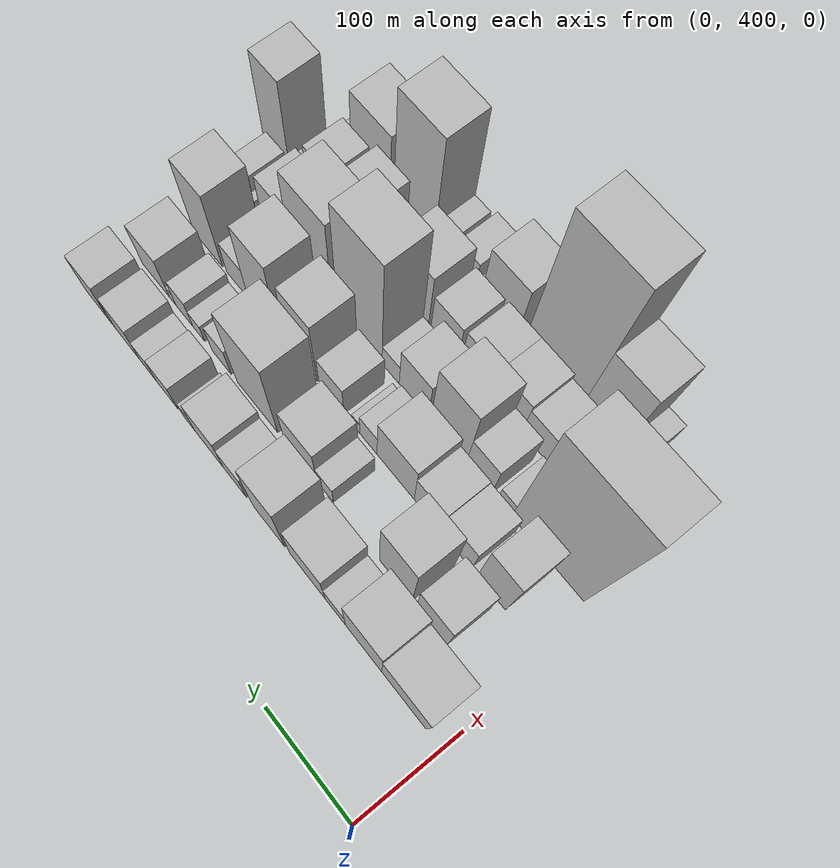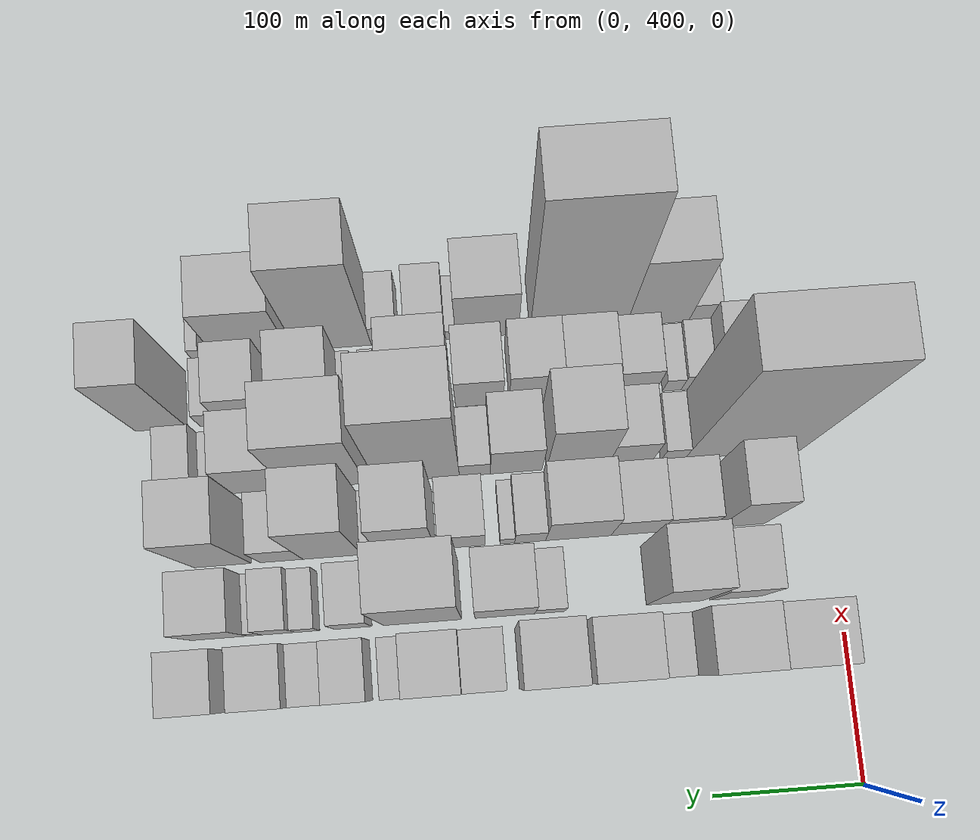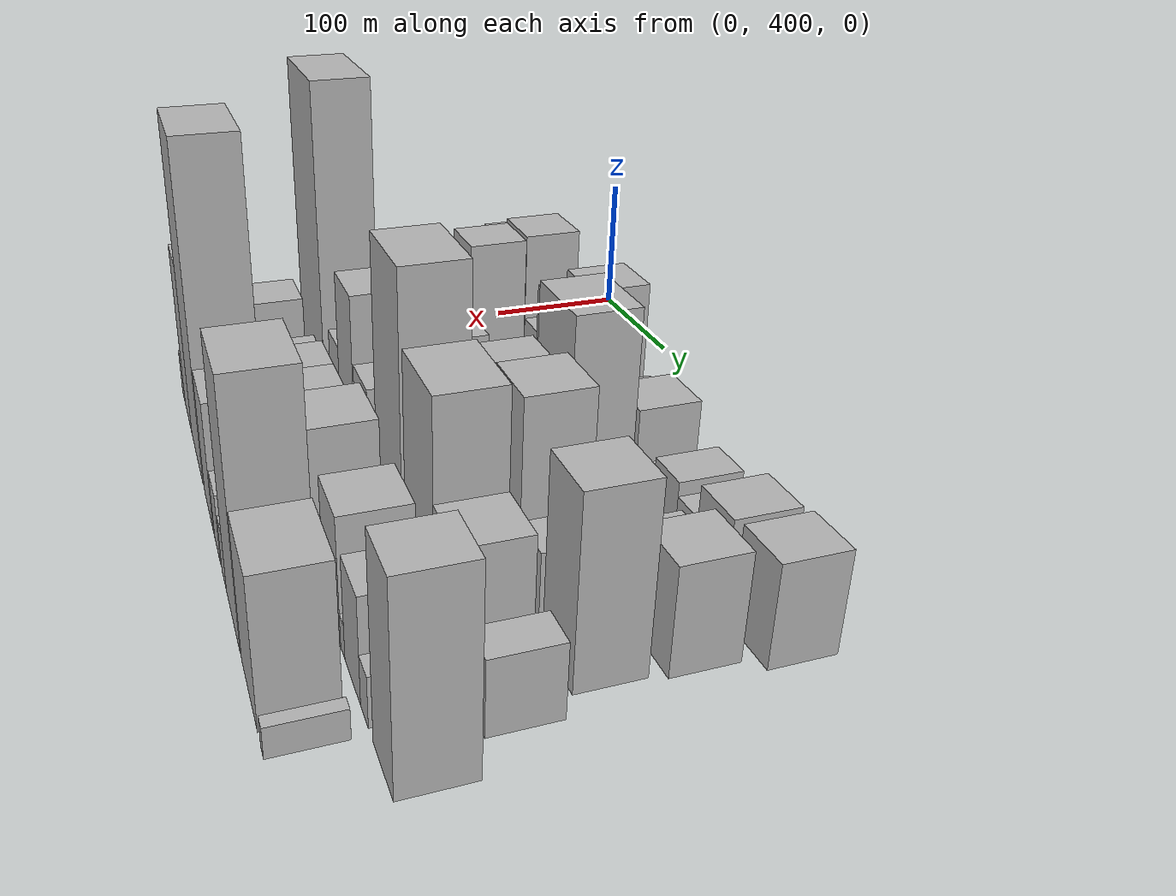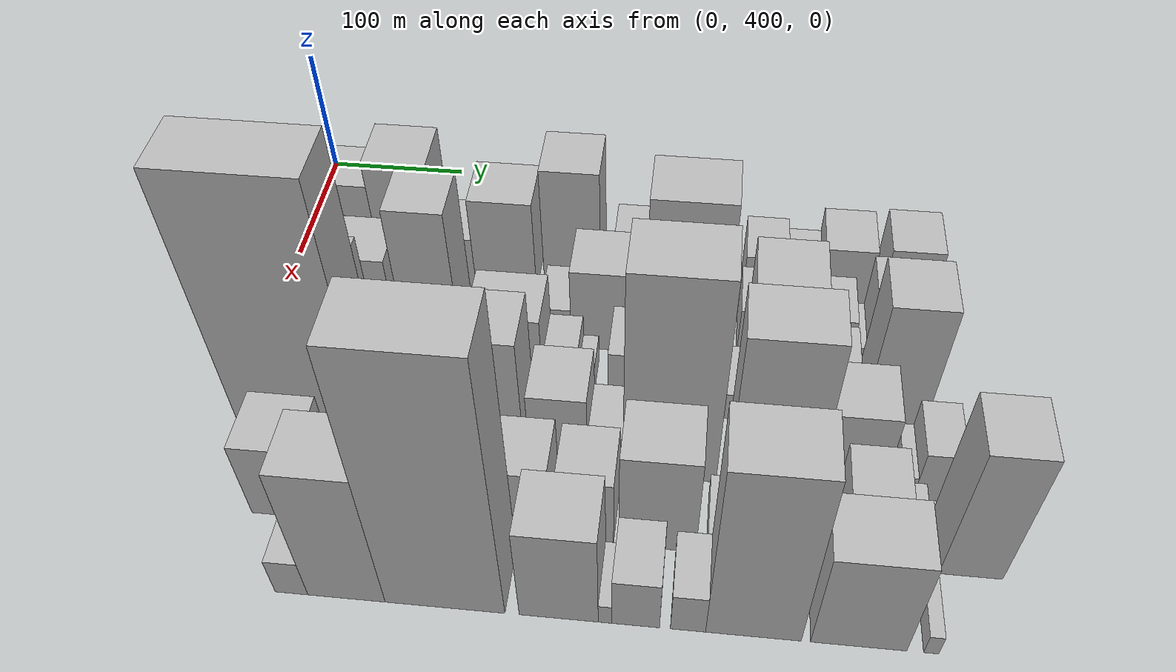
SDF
<sdf version="1.6">
 <world name="default">
  <model name="building_39">
   <static>1</static>
   <pose>100.0000 442.7852 0 0.000000 0.000000 0.000000</pose>
   <link name="link">
    <pose>0 0 43.50 0 0 0</pose>
    <collision name="collision"><geometry><box><size>40.0000 49.8468 87.0000</size></box></geometry></collision>
    <visual name="visual">
     <cast_shadows>0</cast_shadows>
     <geometry><box><size>40.0000 49.8468 87.0000</size></box></geometry>
     <material>
      <script>
       <uri>model://HANNAS_wall/materials/scripts</uri>
       <uri>model://HANNAS_wall/materials/textures</uri>
       <name>vrc/HANNAS_wall</name>
      </script>
     </material>
    </visual>
   </link>
  </model>
  <model name="building_40">
   <static>1</static>
   <pose>100.0000 488.5951 0 0.000000 0.000000 0.000000</pose>
   <link name="link">
    <pose>0 0 54.00 0 0 0</pose>
    <collision name="collision"><geometry><box><size>40.0000 41.7729 108.0000</size></box></geometry></collision>
    <visual name="visual">
     <cast_shadows>0</cast_shadows>
     <geometry><box><size>40.0000 41.7729 108.0000</size></box></geometry>
     <material>
      <script>
       <uri>model://HANNAS_wall/materials/scripts</uri>
       <uri>model://HANNAS_wall/materials/textures</uri>
       <name>vrc/HANNAS_wall</name>
      </script>
     </material>
    </visual>
   </link>
  </model>
  <model name="building_41">
   <static>1</static>
   <pose>100.0000 521.5661 0 0.000000 0.000000 0.000000</pose>
   <link name="link">
    <pose>0 0 22.50 0 0 0</pose>
    <collision name="collision"><geometry><box><size>40.0000 24.1690 45.0000</size></box></geometry></collision>
    <visual name="visual">
     <cast_shadows>0</cast_shadows>
     <geometry><box><size>40.0000 24.1690 45.0000</size></box></geometry>
     <material>
      <script>
       <uri>model://HANNAS_wall/materials/scripts</uri>
       <uri>model://HANNAS_wall/materials/textures</uri>
       <name>vrc/HANNAS_wall</name>
      </script>
     </material>
    </visual>
   </link>
  </model>
  <model name="building_42">
   <static>1</static>
   <pose>100.0000 555.1647 0 0.000000 0.000000 0.000000</pose>
   <link name="link">
    <pose>0 0 40.50 0 0 0</pose>
    <collision name="collision"><geometry><box><size>40.0000 43.0284 81.0000</size></box></geometry></collision>
    <visual name="visual">
     <cast_shadows>0</cast_shadows>
     <geometry><box><size>40.0000 43.0284 81.0000</size></box></geometry>
     <material>
      <script>
       <uri>model://HANNAS_wall/materials/scripts</uri>
       <uri>model://HANNAS_wall/materials/textures</uri>
       <name>vrc/HANNAS_wall</name>
      </script>
     </material>
    </visual>
   </link>
  </model>
  <model name="building_43">
   <static>1</static>
   <pose>100.0000 602.2209 0 0.000000 0.000000 0.000000</pose>
   <link name="link">
    <pose>0 0 55.50 0 0 0</pose>
    <collision name="collision"><geometry><box><size>40.0000 39.0840 111.0000</size></box></geometry></collision>
    <visual name="visual">
     <cast_shadows>0</cast_shadows>
     <geometry><box><size>40.0000 39.0840 111.0000</size></box></geometry>
     <material>
      <script>
       <uri>model://HANNAS_wall/materials/scripts</uri>
       <uri>model://HANNAS_wall/materials/textures</uri>
       <name>vrc/HANNAS_wall</name>
      </script>
     </material>
    </visual>
   </link>
  </model>
  <model name="building_44">
   <static>1</static>
   <pose>100.0000 645.0443 0 0.000000 0.000000 0.000000</pose>
   <link name="link">
    <pose>0 0 25.50 0 0 0</pose>
    <collision name="collision"><geometry><box><size>40.0000 28.5628 51.0000</size></box></geometry></collision>
    <visual name="visual">
     <cast_shadows>0</cast_shadows>
     <geometry><box><size>40.0000 28.5628 51.0000</size></box></geometry>
     <material>
      <script>
       <uri>model://HANNAS_wall/materials/scripts</uri>
       <uri>model://HANNAS_wall/materials/textures</uri>
       <name>vrc/HANNAS_wall</name>
      </script>
     </material>
    </visual>
   </link>
  </model>
  <model name="building_45">
   <static>1</static>
   <pose>100.0000 678.0807 0 0.000000 0.000000 0.000000</pose>
   <link name="link">
    <pose>0 0 33.00 0 0 0</pose>
    <collision name="collision"><geometry><box><size>40.0000 37.5100 66.0000</size></box></geometry></collision>
    <visual name="visual">
     <cast_shadows>0</cast_shadows>
     <geometry><box><size>40.0000 37.5100 66.0000</size></box></geometry>
     <material>
      <script>
       <uri>model://HANNAS_wall/materials/scripts</uri>
       <uri>model://HANNAS_wall/materials/textures</uri>
       <name>vrc/HANNAS_wall</name>
      </script>
     </material>
    </visual>
   </link>
  </model>
  <model name="building_46">
   <static>1</static>
   <pose>100.0000 704.9046 0 0.000000 0.000000 0.000000</pose>
   <link name="link">
    <pose>0 0 15.00 0 0 0</pose>
    <collision name="collision"><geometry><box><size>40.0000 16.1377 30.0000</size></box></geometry></collision>
    <visual name="visual">
     <cast_shadows>0</cast_shadows>
     <geometry><box><size>40.0000 16.1377 30.0000</size></box></geometry>
     <material>
      <script>
       <uri>model://HANNAS_wall/materials/scripts</uri>
       <uri>model://HANNAS_wall/materials/textures</uri>
       <name>vrc/HANNAS_wall</name>
      </script>
     </material>
    </visual>
   </link>
  </model>
  <model name="building_47">
   <static>1</static>
   <pose>100.0000 734.1687 0 0.000000 0.000000 0.000000</pose>
   <link name="link">
    <pose>0 0 24.00 0 0 0</pose>
    <collision name="collision"><geometry><box><size>40.0000 28.3905 48.0000</size></box></geometry></collision>
    <visual name="visual">
     <cast_shadows>0</cast_shadows>
     <geometry><box><size>40.0000 28.3905 48.0000</size></box></geometry>
     <material>
      <script>
       <uri>model://HANNAS_wall/materials/scripts</uri>
       <uri>model://HANNAS_wall/materials/textures</uri>
       <name>vrc/HANNAS_wall</name>
      </script>
     </material>
    </visual>
   </link>
  </model>
  <model name="building_48">
   <static>1</static>
   <pose>100.0000 759.6690 0 0.000000 0.000000 0.000000</pose>
   <link name="link">
    <pose>0 0 19.50 0 0 0</pose>
    <collision name="collision"><geometry><box><size>40.0000 22.6100 39.0000</size></box></geometry></collision>
    <visual name="visual">
     <cast_shadows>0</cast_shadows>
     <geometry><box><size>40.0000 22.6100 39.0000</size></box></geometry>
     <material>
      <script>
       <uri>model://HANNAS_wall/materials/scripts</uri>
       <uri>model://HANNAS_wall/materials/textures</uri>
       <name>vrc/HANNAS_wall</name>
      </script>
     </material>
    </visual>
   </link>
  </model>
  <model name="building_49">
   <static>1</static>
   <pose>100.0000 788.0264 0 0.000000 0.000000 0.000000</pose>
   <link name="link">
    <pose>0 0 30.00 0 0 0</pose>
    <collision name="collision"><geometry><box><size>40.0000 34.1048 60.0000</size></box></geometry></collision>
    <visual name="visual">
     <cast_shadows>0</cast_shadows>
     <geometry><box><size>40.0000 34.1048 60.0000</size></box></geometry>
     <material>
      <script>
       <uri>model://HANNAS_wall/materials/scripts</uri>
       <uri>model://HANNAS_wall/materials/textures</uri>
       <name>vrc/HANNAS_wall</name>
      </script>
     </material>
    </visual>
   </link>
  </model>
  <model name="building_50">
   <static>1</static>
   <pose>100.0000 809.2436 0 0.000000 0.000000 0.000000</pose>
   <link name="link">
    <pose>0 0 9.00 0 0 0</pose>
    <collision name="collision"><geometry><box><size>40.0000 8.3298 18.0000</size></box></geometry></collision>
    <visual name="visual">
     <cast_shadows>0</cast_shadows>
     <geometry><box><size>40.0000 8.3298 18.0000</size></box></geometry>
     <material>
      <script>
       <uri>model://HANNAS_wall/materials/scripts</uri>
       <uri>model://HANNAS_wall/materials/textures</uri>
       <name>vrc/HANNAS_wall</name>
      </script>
     </material>
    </visual>
   </link>
  </model>
  <model name="building_51">
   <static>1</static>
   <pose>100.0000 830.7961 0 0.000000 0.000000 0.000000</pose>
   <link name="link">
    <pose>0 0 31.50 0 0 0</pose>
    <collision name="collision"><geometry><box><size>40.0000 34.7751 63.0000</size></box></geometry></collision>
    <visual name="visual">
     <cast_shadows>0</cast_shadows>
     <geometry><box><size>40.0000 34.7751 63.0000</size></box></geometry>
     <material>
      <script>
       <uri>model://HANNAS_wall/materials/scripts</uri>
       <uri>model://HANNAS_wall/materials/textures</uri>
       <name>vrc/HANNAS_wall</name>
      </script>
     </material>
    </visual>
   </link>
  </model>
  <model name="building_86">
   <static>1</static>
   <pose>149.0000 470.6335 0 0.000000 0.000000 0.000000</pose>
   <link name="link">
    <pose>0 0 34.50 0 0 0</pose>
    <collision name="collision"><geometry><box><size>40.0000 35.2386 69.0000</size></box></geometry></collision>
    <visual name="visual">
     <cast_shadows>0</cast_shadows>
     <geometry><box><size>40.0000 35.2386 69.0000</size></box></geometry>
     <material>
      <script>
       <uri>model://HANNAS_wall/materials/scripts</uri>
       <uri>model://HANNAS_wall/materials/textures</uri>
       <name>vrc/HANNAS_wall</name>
      </script>
     </material>
    </visual>
   </link>
  </model>
  <model name="building_87">
   <static>1</static>
   <pose>149.0000 512.4577 0 0.000000 0.000000 0.000000</pose>
   <link name="link">
    <pose>0 0 57.00 0 0 0</pose>
    <collision name="collision"><geometry><box><size>40.0000 38.4098 114.0000</size></box></geometry></collision>
    <visual name="visual">
     <cast_shadows>0</cast_shadows>
     <geometry><box><size>40.0000 38.4098 114.0000</size></box></geometry>
     <material>
      <script>
       <uri>model://HANNAS_wall/materials/scripts</uri>
       <uri>model://HANNAS_wall/materials/textures</uri>
       <name>vrc/HANNAS_wall</name>
      </script>
     </material>
    </visual>
   </link>
  </model>
  <model name="building_88">
   <static>1</static>
   <pose>149.0000 597.3273 0 0.000000 0.000000 0.000000</pose>
   <link name="link">
    <pose>0 0 18.00 0 0 0</pose>
    <collision name="collision"><geometry><box><size>40.0000 20.4431 36.0000</size></box></geometry></collision>
    <visual name="visual">
     <cast_shadows>0</cast_shadows>
     <geometry><box><size>40.0000 20.4431 36.0000</size></box></geometry>
     <material>
      <script>
       <uri>model://HANNAS_wall/materials/scripts</uri>
       <uri>model://HANNAS_wall/materials/textures</uri>
       <name>vrc/HANNAS_wall</name>
      </script>
     </material>
    </visual>
   </link>
  </model>
  <model name="building_89">
   <static>1</static>
   <pose>149.0000 627.6683 0 0.000000 0.000000 0.000000</pose>
   <link name="link">
    <pose>0 0 36.00 0 0 0</pose>
    <collision name="collision"><geometry><box><size>40.0000 40.2389 72.0000</size></box></geometry></collision>
    <visual name="visual">
     <cast_shadows>0</cast_shadows>
     <geometry><box><size>40.0000 40.2389 72.0000</size></box></geometry>
     <material>
      <script>
       <uri>model://HANNAS_wall/materials/scripts</uri>
       <uri>model://HANNAS_wall/materials/textures</uri>
       <name>vrc/HANNAS_wall</name>
      </script>
     </material>
    </visual>
   </link>
  </model>
  <model name="building_90">
   <static>1</static>
   <pose>149.0000 683.1310 0 0.000000 0.000000 0.000000</pose>
   <link name="link">
    <pose>0 0 69.00 0 0 0</pose>
    <collision name="collision"><geometry><box><size>40.0000 52.6865 138.0000</size></box></geometry></collision>
    <visual name="visual">
     <cast_shadows>0</cast_shadows>
     <geometry><box><size>40.0000 52.6865 138.0000</size></box></geometry>
     <material>
      <script>
       <uri>model://HANNAS_wall/materials/scripts</uri>
       <uri>model://HANNAS_wall/materials/textures</uri>
       <name>vrc/HANNAS_wall</name>
      </script>
     </material>
    </visual>
   </link>
  </model>
  <model name="building_91">
   <static>1</static>
   <pose>149.0000 730.1285 0 0.000000 0.000000 0.000000</pose>
   <link name="link">
    <pose>0 0 24.00 0 0 0</pose>
    <collision name="collision"><geometry><box><size>40.0000 25.3084 48.0000</size></box></geometry></collision>
    <visual name="visual">
     <cast_shadows>0</cast_shadows>
     <geometry><box><size>40.0000 25.3084 48.0000</size></box></geometry>
     <material>
      <script>
       <uri>model://HANNAS_wall/materials/scripts</uri>
       <uri>model://HANNAS_wall/materials/textures</uri>
       <name>vrc/HANNAS_wall</name>
      </script>
     </material>
    </visual>
   </link>
  </model>
  <model name="building_92">
   <static>1</static>
   <pose>149.0000 760.8569 0 0.000000 0.000000 0.000000</pose>
   <link name="link">
    <pose>0 0 15.00 0 0 0</pose>
    <collision name="collision"><geometry><box><size>40.0000 16.1484 30.0000</size></box></geometry></collision>
    <visual name="visual">
     <cast_shadows>0</cast_shadows>
     <geometry><box><size>40.0000 16.1484 30.0000</size></box></geometry>
     <material>
      <script>
       <uri>model://HANNAS_wall/materials/scripts</uri>
       <uri>model://HANNAS_wall/materials/textures</uri>
       <name>vrc/HANNAS_wall</name>
      </script>
     </material>
    </visual>
   </link>
  </model>
  <model name="building_93">
   <static>1</static>
   <pose>149.0000 780.4100 0 0.000000 0.000000 0.000000</pose>
   <link name="link">
    <pose>0 0 22.50 0 0 0</pose>
    <collision name="collision"><geometry><box><size>40.0000 22.9578 45.0000</size></box></geometry></collision>
    <visual name="visual">
     <cast_shadows>0</cast_shadows>
     <geometry><box><size>40.0000 22.9578 45.0000</size></box></geometry>
     <material>
      <script>
       <uri>model://HANNAS_wall/materials/scripts</uri>
       <uri>model://HANNAS_wall/materials/textures</uri>
       <name>vrc/HANNAS_wall</name>
      </script>
     </material>
    </visual>
   </link>
  </model>
  <model name="building_94">
   <static>1</static>
   <pose>149.0000 796.4167 0 0.000000 0.000000 0.000000</pose>
   <link name="link">
    <pose>0 0 10.50 0 0 0</pose>
    <collision name="collision"><geometry><box><size>40.0000 9.0556 21.0000</size></box></geometry></collision>
    <visual name="visual">
     <cast_shadows>0</cast_shadows>
     <geometry><box><size>40.0000 9.0556 21.0000</size></box></geometry>
     <material>
      <script>
       <uri>model://HANNAS_wall/materials/scripts</uri>
       <uri>model://HANNAS_wall/materials/textures</uri>
       <name>vrc/HANNAS_wall</name>
      </script>
     </material>
    </visual>
   </link>
  </model>
  <model name="building_95">
   <static>1</static>
   <pose>149.0000 819.9906 0 0.000000 0.000000 0.000000</pose>
   <link name="link">
    <pose>0 0 33.00 0 0 0</pose>
    <collision name="collision"><geometry><box><size>40.0000 38.0922 66.0000</size></box></geometry></collision>
    <visual name="visual">
     <cast_shadows>0</cast_shadows>
     <geometry><box><size>40.0000 38.0922 66.0000</size></box></geometry>
     <material>
      <script>
       <uri>model://HANNAS_wall/materials/scripts</uri>
       <uri>model://HANNAS_wall/materials/textures</uri>
       <name>vrc/HANNAS_wall</name>
      </script>
     </material>
    </visual>
   </link>
  </model>
  <model name="building_133">
   <static>1</static>
   <pose>198.0000 461.5488 0 0.000000 0.000000 0.000000</pose>
   <link name="link">
    <pose>0 0 49.50 0 0 0</pose>
    <collision name="collision"><geometry><box><size>40.0000 31.7575 99.0000</size></box></geometry></collision>
    <visual name="visual">
     <cast_shadows>0</cast_shadows>
     <geometry><box><size>40.0000 31.7575 99.0000</size></box></geometry>
     <material>
      <script>
       <uri>model://HANNAS_wall/materials/scripts</uri>
       <uri>model://HANNAS_wall/materials/textures</uri>
       <name>vrc/HANNAS_wall</name>
      </script>
     </material>
    </visual>
   </link>
  </model>
  <model name="building_134">
   <static>1</static>
   <pose>198.0000 480.5862 0 0.000000 0.000000 0.000000</pose>
   <link name="link">
    <pose>0 0 7.50 0 0 0</pose>
    <collision name="collision"><geometry><box><size>40.0000 6.3175 15.0000</size></box></geometry></collision>
    <visual name="visual">
     <cast_shadows>0</cast_shadows>
     <geometry><box><size>40.0000 6.3175 15.0000</size></box></geometry>
     <material>
      <script>
       <uri>model://HANNAS_wall/materials/scripts</uri>
       <uri>model://HANNAS_wall/materials/textures</uri>
       <name>vrc/HANNAS_wall</name>
      </script>
     </material>
    </visual>
   </link>
  </model>
  <model name="building_135">
   <static>1</static>
   <pose>198.0000 500.8085 0 0.000000 0.000000 0.000000</pose>
   <link name="link">
    <pose>0 0 28.50 0 0 0</pose>
    <collision name="collision"><geometry><box><size>40.0000 34.1270 57.0000</size></box></geometry></collision>
    <visual name="visual">
     <cast_shadows>0</cast_shadows>
     <geometry><box><size>40.0000 34.1270 57.0000</size></box></geometry>
     <material>
      <script>
       <uri>model://HANNAS_wall/materials/scripts</uri>
       <uri>model://HANNAS_wall/materials/textures</uri>
       <name>vrc/HANNAS_wall</name>
      </script>
     </material>
    </visual>
   </link>
  </model>
  <model name="building_136">
   <static>1</static>
   <pose>198.0000 534.4662 0 0.000000 0.000000 0.000000</pose>
   <link name="link">
    <pose>0 0 30.00 0 0 0</pose>
    <collision name="collision"><geometry><box><size>40.0000 33.1884 60.0000</size></box></geometry></collision>
    <visual name="visual">
     <cast_shadows>0</cast_shadows>
     <geometry><box><size>40.0000 33.1884 60.0000</size></box></geometry>
     <material>
      <script>
       <uri>model://HANNAS_wall/materials/scripts</uri>
       <uri>model://HANNAS_wall/materials/textures</uri>
       <name>vrc/HANNAS_wall</name>
      </script>
     </material>
    </visual>
   </link>
  </model>
  <model name="building_137">
   <static>1</static>
   <pose>198.0000 573.4356 0 0.000000 0.000000 0.000000</pose>
   <link name="link">
    <pose>0 0 39.00 0 0 0</pose>
    <collision name="collision"><geometry><box><size>40.0000 44.7503 78.0000</size></box></geometry></collision>
    <visual name="visual">
     <cast_shadows>0</cast_shadows>
     <geometry><box><size>40.0000 44.7503 78.0000</size></box></geometry>
     <material>
      <script>
       <uri>model://HANNAS_wall/materials/scripts</uri>
       <uri>model://HANNAS_wall/materials/textures</uri>
       <name>vrc/HANNAS_wall</name>
      </script>
     </material>
    </visual>
   </link>
  </model>
  <model name="building_138">
   <static>1</static>
   <pose>198.0000 606.4323 0 0.000000 0.000000 0.000000</pose>
   <link name="link">
    <pose>0 0 21.00 0 0 0</pose>
    <collision name="collision"><geometry><box><size>40.0000 21.2433 42.0000</size></box></geometry></collision>
    <visual name="visual">
     <cast_shadows>0</cast_shadows>
     <geometry><box><size>40.0000 21.2433 42.0000</size></box></geometry>
     <material>
      <script>
       <uri>model://HANNAS_wall/materials/scripts</uri>
       <uri>model://HANNAS_wall/materials/textures</uri>
       <name>vrc/HANNAS_wall</name>
      </script>
     </material>
    </visual>
   </link>
  </model>
  <model name="building_139">
   <static>1</static>
   <pose>198.0000 622.0488 0 0.000000 0.000000 0.000000</pose>
   <link name="link">
    <pose>0 0 12.00 0 0 0</pose>
    <collision name="collision"><geometry><box><size>40.0000 9.9896 24.0000</size></box></geometry></collision>
    <visual name="visual">
     <cast_shadows>0</cast_shadows>
     <geometry><box><size>40.0000 9.9896 24.0000</size></box></geometry>
     <material>
      <script>
       <uri>model://HANNAS_wall/materials/scripts</uri>
       <uri>model://HANNAS_wall/materials/textures</uri>
       <name>vrc/HANNAS_wall</name>
      </script>
     </material>
    </visual>
   </link>
  </model>
  <model name="building_140">
   <static>1</static>
   <pose>198.0000 652.5104 0 0.000000 0.000000 0.000000</pose>
   <link name="link">
    <pose>0 0 27.00 0 0 0</pose>
    <collision name="collision"><geometry><box><size>40.0000 30.9337 54.0000</size></box></geometry></collision>
    <visual name="visual">
     <cast_shadows>0</cast_shadows>
     <geometry><box><size>40.0000 30.9337 54.0000</size></box></geometry>
     <material>
      <script>
       <uri>model://HANNAS_wall/materials/scripts</uri>
       <uri>model://HANNAS_wall/materials/textures</uri>
       <name>vrc/HANNAS_wall</name>
      </script>
     </material>
    </visual>
   </link>
  </model>
  <model name="building_141">
   <static>1</static>
   <pose>198.0000 690.1875 0 0.000000 0.000000 0.000000</pose>
   <link name="link">
    <pose>0 0 55.50 0 0 0</pose>
    <collision name="collision"><geometry><box><size>40.0000 38.4205 111.0000</size></box></geometry></collision>
    <visual name="visual">
     <cast_shadows>0</cast_shadows>
     <geometry><box><size>40.0000 38.4205 111.0000</size></box></geometry>
     <material>
      <script>
       <uri>model://HANNAS_wall/materials/scripts</uri>
       <uri>model://HANNAS_wall/materials/textures</uri>
       <name>vrc/HANNAS_wall</name>
      </script>
     </material>
    </visual>
   </link>
  </model>
  <model name="building_142">
   <static>1</static>
   <pose>198.0000 715.0195 0 0.000000 0.000000 0.000000</pose>
   <link name="link">
    <pose>0 0 12.00 0 0 0</pose>
    <collision name="collision"><geometry><box><size>40.0000 11.2435 24.0000</size></box></geometry></collision>
    <visual name="visual">
     <cast_shadows>0</cast_shadows>
     <geometry><box><size>40.0000 11.2435 24.0000</size></box></geometry>
     <material>
      <script>
       <uri>model://HANNAS_wall/materials/scripts</uri>
       <uri>model://HANNAS_wall/materials/textures</uri>
       <name>vrc/HANNAS_wall</name>
      </script>
     </material>
    </visual>
   </link>
  </model>
  <model name="building_143">
   <static>1</static>
   <pose>198.0000 741.0917 0 0.000000 0.000000 0.000000</pose>
   <link name="link">
    <pose>0 0 61.50 0 0 0</pose>
    <collision name="collision"><geometry><box><size>40.0000 40.9009 123.0000</size></box></geometry></collision>
    <visual name="visual">
     <cast_shadows>0</cast_shadows>
     <geometry><box><size>40.0000 40.9009 123.0000</size></box></geometry>
     <material>
      <script>
       <uri>model://HANNAS_wall/materials/scripts</uri>
       <uri>model://HANNAS_wall/materials/textures</uri>
       <name>vrc/HANNAS_wall</name>
      </script>
     </material>
    </visual>
   </link>
  </model>
  <model name="building_144">
   <static>1</static>
   <pose>198.0000 776.1401 0 0.000000 0.000000 0.000000</pose>
   <link name="link">
    <pose>0 0 25.50 0 0 0</pose>
    <collision name="collision"><geometry><box><size>40.0000 29.1960 51.0000</size></box></geometry></collision>
    <visual name="visual">
     <cast_shadows>0</cast_shadows>
     <geometry><box><size>40.0000 29.1960 51.0000</size></box></geometry>
     <material>
      <script>
       <uri>model://HANNAS_wall/materials/scripts</uri>
       <uri>model://HANNAS_wall/materials/textures</uri>
       <name>vrc/HANNAS_wall</name>
      </script>
     </material>
    </visual>
   </link>
  </model>
  <model name="building_145">
   <static>1</static>
   <pose>198.0000 816.1346 0 0.000000 0.000000 0.000000</pose>
   <link name="link">
    <pose>0 0 57.00 0 0 0</pose>
    <collision name="collision"><geometry><box><size>40.0000 38.7928 114.0000</size></box></geometry></collision>
    <visual name="visual">
     <cast_shadows>0</cast_shadows>
     <geometry><box><size>40.0000 38.7928 114.0000</size></box></geometry>
     <material>
      <script>
       <uri>model://HANNAS_wall/materials/scripts</uri>
       <uri>model://HANNAS_wall/materials/textures</uri>
       <name>vrc/HANNAS_wall</name>
      </script>
     </material>
    </visual>
   </link>
  </model>
  <model name="building_180">
   <static>1</static>
   <pose>247.0000 455.0010 0 0.000000 0.000000 0.000000</pose>
   <link name="link">
    <pose>0 0 112.50 0 0 0</pose>
    <collision name="collision"><geometry><box><size>40.0000 80.8061 225.0000</size></box></geometry></collision>
    <visual name="visual">
     <cast_shadows>0</cast_shadows>
     <geometry><box><size>40.0000 80.8061 225.0000</size></box></geometry>
     <material>
      <script>
       <uri>model://HANNAS_wall/materials/scripts</uri>
       <uri>model://HANNAS_wall/materials/textures</uri>
       <name>vrc/HANNAS_wall</name>
      </script>
     </material>
    </visual>
   </link>
  </model>
  <model name="building_181">
   <static>1</static>
   <pose>247.0000 503.7712 0 0.000000 0.000000 0.000000</pose>
   <link name="link">
    <pose>0 0 16.50 0 0 0</pose>
    <collision name="collision"><geometry><box><size>40.0000 16.7344 33.0000</size></box></geometry></collision>
    <visual name="visual">
     <cast_shadows>0</cast_shadows>
     <geometry><box><size>40.0000 16.7344 33.0000</size></box></geometry>
     <material>
      <script>
       <uri>model://HANNAS_wall/materials/scripts</uri>
       <uri>model://HANNAS_wall/materials/textures</uri>
       <name>vrc/HANNAS_wall</name>
      </script>
     </material>
    </visual>
   </link>
  </model>
  <model name="building_182">
   <static>1</static>
   <pose>247.0000 533.1900 0 0.000000 0.000000 0.000000</pose>
   <link name="link">
    <pose>0 0 30.00 0 0 0</pose>
    <collision name="collision"><geometry><box><size>40.0000 30.1032 60.0000</size></box></geometry></collision>
    <visual name="visual">
     <cast_shadows>0</cast_shadows>
     <geometry><box><size>40.0000 30.1032 60.0000</size></box></geometry>
     <material>
      <script>
       <uri>model://HANNAS_wall/materials/scripts</uri>
       <uri>model://HANNAS_wall/materials/textures</uri>
       <name>vrc/HANNAS_wall</name>
      </script>
     </material>
    </visual>
   </link>
  </model>
  <model name="building_183">
   <static>1</static>
   <pose>247.0000 569.7162 0 0.000000 0.000000 0.000000</pose>
   <link name="link">
    <pose>0 0 57.00 0 0 0</pose>
    <collision name="collision"><geometry><box><size>40.0000 42.9491 114.0000</size></box></geometry></collision>
    <visual name="visual">
     <cast_shadows>0</cast_shadows>
     <geometry><box><size>40.0000 42.9491 114.0000</size></box></geometry>
     <material>
      <script>
       <uri>model://HANNAS_wall/materials/scripts</uri>
       <uri>model://HANNAS_wall/materials/textures</uri>
       <name>vrc/HANNAS_wall</name>
      </script>
     </material>
    </visual>
   </link>
  </model>
  <model name="building_184">
   <static>1</static>
   <pose>247.0000 611.9146 0 0.000000 0.000000 0.000000</pose>
   <link name="link">
    <pose>0 0 34.50 0 0 0</pose>
    <collision name="collision"><geometry><box><size>40.0000 35.4477 69.0000</size></box></geometry></collision>
    <visual name="visual">
     <cast_shadows>0</cast_shadows>
     <geometry><box><size>40.0000 35.4477 69.0000</size></box></geometry>
     <material>
      <script>
       <uri>model://HANNAS_wall/materials/scripts</uri>
       <uri>model://HANNAS_wall/materials/textures</uri>
       <name>vrc/HANNAS_wall</name>
      </script>
     </material>
    </visual>
   </link>
  </model>
  <model name="building_185">
   <static>1</static>
   <pose>247.0000 640.3583 0 0.000000 0.000000 0.000000</pose>
   <link name="link">
    <pose>0 0 18.00 0 0 0</pose>
    <collision name="collision"><geometry><box><size>40.0000 21.4395 36.0000</size></box></geometry></collision>
    <visual name="visual">
     <cast_shadows>0</cast_shadows>
     <geometry><box><size>40.0000 21.4395 36.0000</size></box></geometry>
     <material>
      <script>
       <uri>model://HANNAS_wall/materials/scripts</uri>
       <uri>model://HANNAS_wall/materials/textures</uri>
       <name>vrc/HANNAS_wall</name>
      </script>
     </material>
    </visual>
   </link>
  </model>
  <model name="building_186">
   <static>1</static>
   <pose>247.0000 679.4831 0 0.000000 0.000000 0.000000</pose>
   <link name="link">
    <pose>0 0 88.50 0 0 0</pose>
    <collision name="collision"><geometry><box><size>40.0000 56.8101 177.0000</size></box></geometry></collision>
    <visual name="visual">
     <cast_shadows>0</cast_shadows>
     <geometry><box><size>40.0000 56.8101 177.0000</size></box></geometry>
     <material>
      <script>
       <uri>model://HANNAS_wall/materials/scripts</uri>
       <uri>model://HANNAS_wall/materials/textures</uri>
       <name>vrc/HANNAS_wall</name>
      </script>
     </material>
    </visual>
   </link>
  </model>
  <model name="building_187">
   <static>1</static>
   <pose>247.0000 741.7356 0 0.000000 0.000000 0.000000</pose>
   <link name="link">
    <pose>0 0 67.50 0 0 0</pose>
    <collision name="collision"><geometry><box><size>40.0000 53.6948 135.0000</size></box></geometry></collision>
    <visual name="visual">
     <cast_shadows>0</cast_shadows>
     <geometry><box><size>40.0000 53.6948 135.0000</size></box></geometry>
     <material>
      <script>
       <uri>model://HANNAS_wall/materials/scripts</uri>
       <uri>model://HANNAS_wall/materials/textures</uri>
       <name>vrc/HANNAS_wall</name>
      </script>
     </material>
    </visual>
   </link>
  </model>
  <model name="building_188">
   <static>1</static>
   <pose>247.0000 787.9824 0 0.000000 0.000000 0.000000</pose>
   <link name="link">
    <pose>0 0 37.50 0 0 0</pose>
    <collision name="collision"><geometry><box><size>40.0000 38.7990 75.0000</size></box></geometry></collision>
    <visual name="visual">
     <cast_shadows>0</cast_shadows>
     <geometry><box><size>40.0000 38.7990 75.0000</size></box></geometry>
     <material>
      <script>
       <uri>model://HANNAS_wall/materials/scripts</uri>
       <uri>model://HANNAS_wall/materials/textures</uri>
       <name>vrc/HANNAS_wall</name>
      </script>
     </material>
    </visual>
   </link>
  </model>
  <model name="building_189">
   <static>1</static>
   <pose>247.0000 821.6397 0 0.000000 0.000000 0.000000</pose>
   <link name="link">
    <pose>0 0 10.50 0 0 0</pose>
    <collision name="collision"><geometry><box><size>40.0000 8.5155 21.0000</size></box></geometry></collision>
    <visual name="visual">
     <cast_shadows>0</cast_shadows>
     <geometry><box><size>40.0000 8.5155 21.0000</size></box></geometry>
     <material>
      <script>
       <uri>model://HANNAS_wall/materials/scripts</uri>
       <uri>model://HANNAS_wall/materials/textures</uri>
       <name>vrc/HANNAS_wall</name>
      </script>
     </material>
    </visual>
   </link>
  </model>
  <model name="building_190">
   <static>1</static>
   <pose>247.0000 837.7345 0 0.000000 0.000000 0.000000</pose>
   <link name="link">
    <pose>0 0 22.50 0 0 0</pose>
    <collision name="collision"><geometry><box><size>40.0000 23.6741 45.0000</size></box></geometry></collision>
    <visual name="visual">
     <cast_shadows>0</cast_shadows>
     <geometry><box><size>40.0000 23.6741 45.0000</size></box></geometry>
     <material>
      <script>
       <uri>model://HANNAS_wall/materials/scripts</uri>
       <uri>model://HANNAS_wall/materials/textures</uri>
       <name>vrc/HANNAS_wall</name>
      </script>
     </material>
    </visual>
   </link>
  </model>
  <model name="building_228">
   <static>1</static>
   <pose>296.0000 454.0497 0 0.000000 0.000000 0.000000</pose>
   <link name="link">
    <pose>0 0 33.00 0 0 0</pose>
    <collision name="collision"><geometry><box><size>40.0000 39.5720 66.0000</size></box></geometry></collision>
    <visual name="visual">
     <cast_shadows>0</cast_shadows>
     <geometry><box><size>40.0000 39.5720 66.0000</size></box></geometry>
     <material>
      <script>
       <uri>model://HANNAS_wall/materials/scripts</uri>
       <uri>model://HANNAS_wall/materials/textures</uri>
       <name>vrc/HANNAS_wall</name>
      </script>
     </material>
    </visual>
   </link>
  </model>
  <model name="building_229">
   <static>1</static>
   <pose>296.0000 483.2409 0 0.000000 0.000000 0.000000</pose>
   <link name="link">
    <pose>0 0 16.50 0 0 0</pose>
    <collision name="collision"><geometry><box><size>40.0000 18.8104 33.0000</size></box></geometry></collision>
    <visual name="visual">
     <cast_shadows>0</cast_shadows>
     <geometry><box><size>40.0000 18.8104 33.0000</size></box></geometry>
     <material>
      <script>
       <uri>model://HANNAS_wall/materials/scripts</uri>
       <uri>model://HANNAS_wall/materials/textures</uri>
       <name>vrc/HANNAS_wall</name>
      </script>
     </material>
    </visual>
   </link>
  </model>
  <model name="building_230">
   <static>1</static>
   <pose>296.0000 499.2138 0 0.000000 0.000000 0.000000</pose>
   <link name="link">
    <pose>0 0 13.50 0 0 0</pose>
    <collision name="collision"><geometry><box><size>40.0000 13.1354 27.0000</size></box></geometry></collision>
    <visual name="visual">
     <cast_shadows>0</cast_shadows>
     <geometry><box><size>40.0000 13.1354 27.0000</size></box></geometry>
     <material>
      <script>
       <uri>model://HANNAS_wall/materials/scripts</uri>
       <uri>model://HANNAS_wall/materials/textures</uri>
       <name>vrc/HANNAS_wall</name>
      </script>
     </material>
    </visual>
   </link>
  </model>
  <model name="building_231">
   <static>1</static>
   <pose>296.0000 525.6211 0 0.000000 0.000000 0.000000</pose>
   <link name="link">
    <pose>0 0 27.00 0 0 0</pose>
    <collision name="collision"><geometry><box><size>40.0000 29.6791 54.0000</size></box></geometry></collision>
    <visual name="visual">
     <cast_shadows>0</cast_shadows>
     <geometry><box><size>40.0000 29.6791 54.0000</size></box></geometry>
     <material>
      <script>
       <uri>model://HANNAS_wall/materials/scripts</uri>
       <uri>model://HANNAS_wall/materials/textures</uri>
       <name>vrc/HANNAS_wall</name>
      </script>
     </material>
    </visual>
   </link>
  </model>
  <model name="building_232">
   <static>1</static>
   <pose>296.0000 558.5490 0 0.000000 0.000000 0.000000</pose>
   <link name="link">
    <pose>0 0 31.50 0 0 0</pose>
    <collision name="collision"><geometry><box><size>40.0000 36.1768 63.0000</size></box></geometry></collision>
    <visual name="visual">
     <cast_shadows>0</cast_shadows>
     <geometry><box><size>40.0000 36.1768 63.0000</size></box></geometry>
     <material>
      <script>
       <uri>model://HANNAS_wall/materials/scripts</uri>
       <uri>model://HANNAS_wall/materials/textures</uri>
       <name>vrc/HANNAS_wall</name>
      </script>
     </material>
    </visual>
   </link>
  </model>
  <model name="building_233">
   <static>1</static>
   <pose>296.0000 594.7750 0 0.000000 0.000000 0.000000</pose>
   <link name="link">
    <pose>0 0 31.50 0 0 0</pose>
    <collision name="collision"><geometry><box><size>40.0000 36.2752 63.0000</size></box></geometry></collision>
    <visual name="visual">
     <cast_shadows>0</cast_shadows>
     <geometry><box><size>40.0000 36.2752 63.0000</size></box></geometry>
     <material>
      <script>
       <uri>model://HANNAS_wall/materials/scripts</uri>
       <uri>model://HANNAS_wall/materials/textures</uri>
       <name>vrc/HANNAS_wall</name>
      </script>
     </material>
    </visual>
   </link>
  </model>
  <model name="building_234">
   <static>1</static>
   <pose>296.0000 633.5698 0 0.000000 0.000000 0.000000</pose>
   <link name="link">
    <pose>0 0 30.00 0 0 0</pose>
    <collision name="collision"><geometry><box><size>40.0000 33.3145 60.0000</size></box></geometry></collision>
    <visual name="visual">
     <cast_shadows>0</cast_shadows>
     <geometry><box><size>40.0000 33.3145 60.0000</size></box></geometry>
     <material>
      <script>
       <uri>model://HANNAS_wall/materials/scripts</uri>
       <uri>model://HANNAS_wall/materials/textures</uri>
       <name>vrc/HANNAS_wall</name>
      </script>
     </material>
    </visual>
   </link>
  </model>
  <model name="building_235">
   <static>1</static>
   <pose>296.0000 675.6421 0 0.000000 0.000000 0.000000</pose>
   <link name="link">
    <pose>0 0 43.50 0 0 0</pose>
    <collision name="collision"><geometry><box><size>40.0000 44.8302 87.0000</size></box></geometry></collision>
    <visual name="visual">
     <cast_shadows>0</cast_shadows>
     <geometry><box><size>40.0000 44.8302 87.0000</size></box></geometry>
     <material>
      <script>
       <uri>model://HANNAS_wall/materials/scripts</uri>
       <uri>model://HANNAS_wall/materials/textures</uri>
       <name>vrc/HANNAS_wall</name>
      </script>
     </material>
    </visual>
   </link>
  </model>
  <model name="building_236">
   <static>1</static>
   <pose>296.0000 709.2120 0 0.000000 0.000000 0.000000</pose>
   <link name="link">
    <pose>0 0 10.50 0 0 0</pose>
    <collision name="collision"><geometry><box><size>40.0000 10.3097 21.0000</size></box></geometry></collision>
    <visual name="visual">
     <cast_shadows>0</cast_shadows>
     <geometry><box><size>40.0000 10.3097 21.0000</size></box></geometry>
     <material>
      <script>
       <uri>model://HANNAS_wall/materials/scripts</uri>
       <uri>model://HANNAS_wall/materials/textures</uri>
       <name>vrc/HANNAS_wall</name>
      </script>
     </material>
    </visual>
   </link>
  </model>
  <model name="building_237">
   <static>1</static>
   <pose>296.0000 724.9693 0 0.000000 0.000000 0.000000</pose>
   <link name="link">
    <pose>0 0 10.50 0 0 0</pose>
    <collision name="collision"><geometry><box><size>40.0000 9.2048 21.0000</size></box></geometry></collision>
    <visual name="visual">
     <cast_shadows>0</cast_shadows>
     <geometry><box><size>40.0000 9.2048 21.0000</size></box></geometry>
     <material>
      <script>
       <uri>model://HANNAS_wall/materials/scripts</uri>
       <uri>model://HANNAS_wall/materials/textures</uri>
       <name>vrc/HANNAS_wall</name>
      </script>
     </material>
    </visual>
   </link>
  </model>
  <model name="building_238">
   <static>1</static>
   <pose>296.0000 749.3285 0 0.000000 0.000000 0.000000</pose>
   <link name="link">
    <pose>0 0 39.00 0 0 0</pose>
    <collision name="collision"><geometry><box><size>40.0000 39.5135 78.0000</size></box></geometry></collision>
    <visual name="visual">
     <cast_shadows>0</cast_shadows>
     <geometry><box><size>40.0000 39.5135 78.0000</size></box></geometry>
     <material>
      <script>
       <uri>model://HANNAS_wall/materials/scripts</uri>
       <uri>model://HANNAS_wall/materials/textures</uri>
       <name>vrc/HANNAS_wall</name>
      </script>
     </material>
    </visual>
   </link>
  </model>
  <model name="building_239">
   <static>1</static>
   <pose>296.0000 773.8766 0 0.000000 0.000000 0.000000</pose>
   <link name="link">
    <pose>0 0 10.50 0 0 0</pose>
    <collision name="collision"><geometry><box><size>40.0000 9.5827 21.0000</size></box></geometry></collision>
    <visual name="visual">
     <cast_shadows>0</cast_shadows>
     <geometry><box><size>40.0000 9.5827 21.0000</size></box></geometry>
     <material>
      <script>
       <uri>model://HANNAS_wall/materials/scripts</uri>
       <uri>model://HANNAS_wall/materials/textures</uri>
       <name>vrc/HANNAS_wall</name>
      </script>
     </material>
    </visual>
   </link>
  </model>
  <model name="building_240">
   <static>1</static>
   <pose>296.0000 795.4544 0 0.000000 0.000000 0.000000</pose>
   <link name="link">
    <pose>0 0 31.50 0 0 0</pose>
    <collision name="collision"><geometry><box><size>40.0000 33.5730 63.0000</size></box></geometry></collision>
    <visual name="visual">
     <cast_shadows>0</cast_shadows>
     <geometry><box><size>40.0000 33.5730 63.0000</size></box></geometry>
     <material>
      <script>
       <uri>model://HANNAS_wall/materials/scripts</uri>
       <uri>model://HANNAS_wall/materials/textures</uri>
       <name>vrc/HANNAS_wall</name>
      </script>
     </material>
    </visual>
   </link>
  </model>
  <model name="building_241">
   <static>1</static>
   <pose>296.0000 819.9812 0 0.000000 0.000000 0.000000</pose>
   <link name="link">
    <pose>0 0 15.00 0 0 0</pose>
    <collision name="collision"><geometry><box><size>40.0000 15.4806 30.0000</size></box></geometry></collision>
    <visual name="visual">
     <cast_shadows>0</cast_shadows>
     <geometry><box><size>40.0000 15.4806 30.0000</size></box></geometry>
     <material>
      <script>
       <uri>model://HANNAS_wall/materials/scripts</uri>
       <uri>model://HANNAS_wall/materials/textures</uri>
       <name>vrc/HANNAS_wall</name>
      </script>
     </material>
    </visual>
   </link>
  </model>
  <model name="building_242">
   <static>1</static>
   <pose>296.0000 854.6753 0 0.000000 0.000000 0.000000</pose>
   <link name="link">
    <pose>0 0 58.50 0 0 0</pose>
    <collision name="collision"><geometry><box><size>40.0000 35.9076 117.0000</size></box></geometry></collision>
    <visual name="visual">
     <cast_shadows>0</cast_shadows>
     <geometry><box><size>40.0000 35.9076 117.0000</size></box></geometry>
     <material>
      <script>
       <uri>model://HANNAS_wall/materials/scripts</uri>
       <uri>model://HANNAS_wall/materials/textures</uri>
       <name>vrc/HANNAS_wall</name>
      </script>
     </material>
    </visual>
   </link>
  </model>
  <model name="building_279">
   <static>1</static>
   <pose>345.0000 472.9247 0 0.000000 0.000000 0.000000</pose>
   <link name="link">
    <pose>0 0 16.50 0 0 0</pose>
    <collision name="collision"><geometry><box><size>40.0000 18.8477 33.0000</size></box></geometry></collision>
    <visual name="visual">
     <cast_shadows>0</cast_shadows>
     <geometry><box><size>40.0000 18.8477 33.0000</size></box></geometry>
     <material>
      <script>
       <uri>model://HANNAS_wall/materials/scripts</uri>
       <uri>model://HANNAS_wall/materials/textures</uri>
       <name>vrc/HANNAS_wall</name>
      </script>
     </material>
    </visual>
   </link>
  </model>
  <model name="building_280">
   <static>1</static>
   <pose>345.0000 504.5150 0 0.000000 0.000000 0.000000</pose>
   <link name="link">
    <pose>0 0 60.00 0 0 0</pose>
    <collision name="collision"><geometry><box><size>40.0000 44.3329 120.0000</size></box></geometry></collision>
    <visual name="visual">
     <cast_shadows>0</cast_shadows>
     <geometry><box><size>40.0000 44.3329 120.0000</size></box></geometry>
     <material>
      <script>
       <uri>model://HANNAS_wall/materials/scripts</uri>
       <uri>model://HANNAS_wall/materials/textures</uri>
       <name>vrc/HANNAS_wall</name>
      </script>
     </material>
    </visual>
   </link>
  </model>
  <model name="building_281">
   <static>1</static>
   <pose>345.0000 560.5668 0 0.000000 0.000000 0.000000</pose>
   <link name="link">
    <pose>0 0 111.00 0 0 0</pose>
    <collision name="collision"><geometry><box><size>40.0000 67.7708 222.0000</size></box></geometry></collision>
    <visual name="visual">
     <cast_shadows>0</cast_shadows>
     <geometry><box><size>40.0000 67.7708 222.0000</size></box></geometry>
     <material>
      <script>
       <uri>model://HANNAS_wall/materials/scripts</uri>
       <uri>model://HANNAS_wall/materials/textures</uri>
       <name>vrc/HANNAS_wall</name>
      </script>
     </material>
    </visual>
   </link>
  </model>
  <model name="building_282">
   <static>1</static>
   <pose>345.0000 624.5082 0 0.000000 0.000000 0.000000</pose>
   <link name="link">
    <pose>0 0 42.00 0 0 0</pose>
    <collision name="collision"><geometry><box><size>40.0000 44.1119 84.0000</size></box></geometry></collision>
    <visual name="visual">
     <cast_shadows>0</cast_shadows>
     <geometry><box><size>40.0000 44.1119 84.0000</size></box></geometry>
     <material>
      <script>
       <uri>model://HANNAS_wall/materials/scripts</uri>
       <uri>model://HANNAS_wall/materials/textures</uri>
       <name>vrc/HANNAS_wall</name>
      </script>
     </material>
    </visual>
   </link>
  </model>
  <model name="building_283">
   <static>1</static>
   <pose>345.0000 650.2836 0 0.000000 0.000000 0.000000</pose>
   <link name="link">
    <pose>0 0 9.00 0 0 0</pose>
    <collision name="collision"><geometry><box><size>40.0000 7.4389 18.0000</size></box></geometry></collision>
    <visual name="visual">
     <cast_shadows>0</cast_shadows>
     <geometry><box><size>40.0000 7.4389 18.0000</size></box></geometry>
     <material>
      <script>
       <uri>model://HANNAS_wall/materials/scripts</uri>
       <uri>model://HANNAS_wall/materials/textures</uri>
       <name>vrc/HANNAS_wall</name>
      </script>
     </material>
    </visual>
   </link>
  </model>
  <model name="building_284">
   <static>1</static>
   <pose>345.0000 667.2495 0 0.000000 0.000000 0.000000</pose>
   <link name="link">
    <pose>0 0 22.50 0 0 0</pose>
    <collision name="collision"><geometry><box><size>40.0000 26.4929 45.0000</size></box></geometry></collision>
    <visual name="visual">
     <cast_shadows>0</cast_shadows>
     <geometry><box><size>40.0000 26.4929 45.0000</size></box></geometry>
     <material>
      <script>
       <uri>model://HANNAS_wall/materials/scripts</uri>
       <uri>model://HANNAS_wall/materials/textures</uri>
       <name>vrc/HANNAS_wall</name>
      </script>
     </material>
    </visual>
   </link>
  </model>
  <model name="building_285">
   <static>1</static>
   <pose>345.0000 696.1545 0 0.000000 0.000000 0.000000</pose>
   <link name="link">
    <pose>0 0 18.00 0 0 0</pose>
    <collision name="collision"><geometry><box><size>40.0000 19.3170 36.0000</size></box></geometry></collision>
    <visual name="visual">
     <cast_shadows>0</cast_shadows>
     <geometry><box><size>40.0000 19.3170 36.0000</size></box></geometry>
     <material>
      <script>
       <uri>model://HANNAS_wall/materials/scripts</uri>
       <uri>model://HANNAS_wall/materials/textures</uri>
       <name>vrc/HANNAS_wall</name>
      </script>
     </material>
    </visual>
   </link>
  </model>
  <model name="building_286">
   <static>1</static>
   <pose>345.0000 731.9293 0 0.000000 0.000000 0.000000</pose>
   <link name="link">
    <pose>0 0 78.00 0 0 0</pose>
    <collision name="collision"><geometry><box><size>40.0000 52.2327 156.0000</size></box></geometry></collision>
    <visual name="visual">
     <cast_shadows>0</cast_shadows>
     <geometry><box><size>40.0000 52.2327 156.0000</size></box></geometry>
     <material>
      <script>
       <uri>model://HANNAS_wall/materials/scripts</uri>
       <uri>model://HANNAS_wall/materials/textures</uri>
       <name>vrc/HANNAS_wall</name>
      </script>
     </material>
    </visual>
   </link>
  </model>
  <model name="building_287">
   <static>1</static>
   <pose>345.0000 789.0058 0 0.000000 0.000000 0.000000</pose>
   <link name="link">
    <pose>0 0 43.50 0 0 0</pose>
    <collision name="collision"><geometry><box><size>40.0000 51.9202 87.0000</size></box></geometry></collision>
    <visual name="visual">
     <cast_shadows>0</cast_shadows>
     <geometry><box><size>40.0000 51.9202 87.0000</size></box></geometry>
     <material>
      <script>
       <uri>model://HANNAS_wall/materials/scripts</uri>
       <uri>model://HANNAS_wall/materials/textures</uri>
       <name>vrc/HANNAS_wall</name>
      </script>
     </material>
    </visual>
   </link>
  </model>
  <model name="building_288">
   <static>1</static>
   <pose>345.0000 828.0532 0 0.000000 0.000000 0.000000</pose>
   <link name="link">
    <pose>0 0 9.00 0 0 0</pose>
    <collision name="collision"><geometry><box><size>40.0000 8.1745 18.0000</size></box></geometry></collision>
    <visual name="visual">
     <cast_shadows>0</cast_shadows>
     <geometry><box><size>40.0000 8.1745 18.0000</size></box></geometry>
     <material>
      <script>
       <uri>model://HANNAS_wall/materials/scripts</uri>
       <uri>model://HANNAS_wall/materials/textures</uri>
       <name>vrc/HANNAS_wall</name>
      </script>
     </material>
    </visual>
   </link>
  </model>
 </world>
</sdf>
